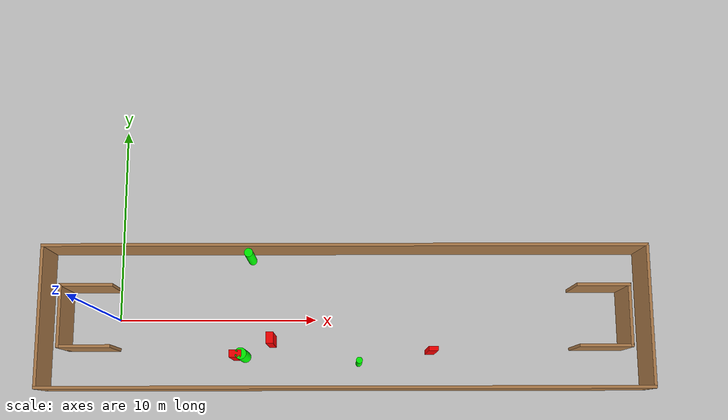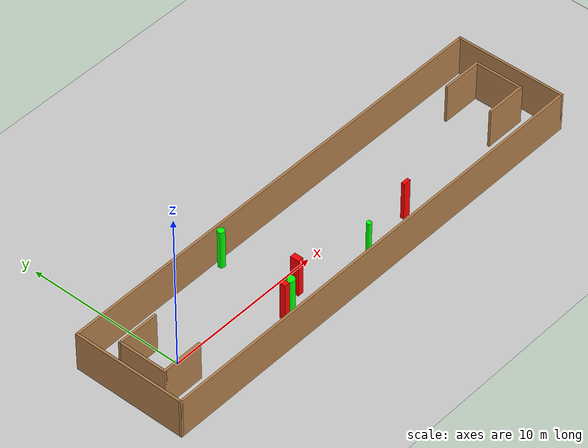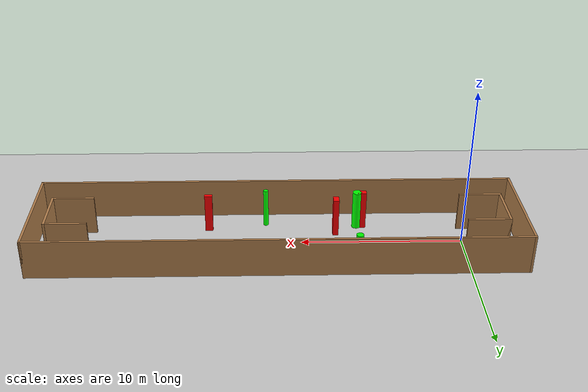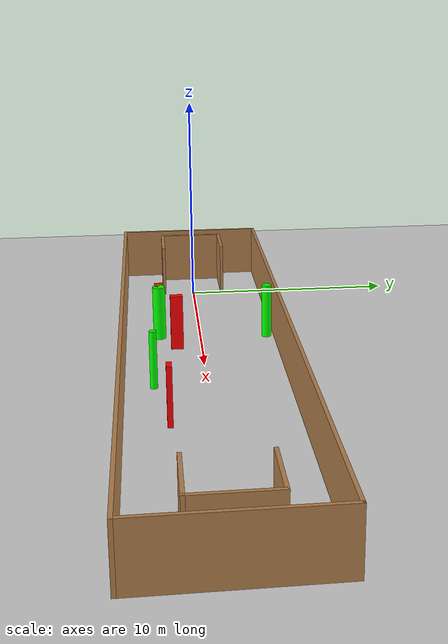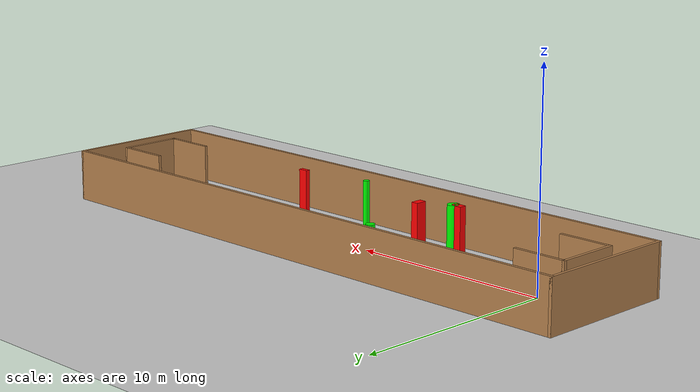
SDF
<sdf version="1.7">
 <world name="default">
  <light name="sun" type="directional">
   <pose>0 0 10 0 -0 0</pose>
   <diffuse>0.8 0.8 0.8 1</diffuse>
   <specular>0.2 0.2 0.2 1</specular>
   <attenuation>
    <range>1000</range>
    <constant>0.9</constant>
    <linear>0.01</linear>
    <quadratic>0.001</quadratic>
   </attenuation>
   <direction>-0.5 0.1 -0.9</direction>
   <spot><inner_angle>0</inner_angle><outer_angle>0</outer_angle><falloff>0</falloff></spot>
  </light>
  <model name="ground_plane">
   <static>1</static>
   <link name="link">
    <collision name="collision">
     <geometry><plane><normal>0 0 1</normal><size>100 100</size></plane></geometry>
     <surface>
      <contact><collide_bitmask>65535</collide_bitmask></contact>
      <friction><ode><mu>100</mu><mu2>50</mu2></ode></friction>
     </surface>
    </collision>
    <visual name="visual">
     <cast_shadows>0</cast_shadows>
     <geometry><plane><normal>0 0 1</normal><size>100 100</size></plane></geometry>
     <material>
      <script><uri>file://media/materials/scripts/gazebo.material</uri><name>Gazebo/Grey</name></script>
     </material>
    </visual>
   </link>
  </model>
  <gravity>0 0 -9.8</gravity>
  <magnetic_field>6e-06 2.3e-05 -4.2e-05</magnetic_field>
  <atmosphere type="adiabatic"/>
  <physics type="ode">
   <max_step_size>0.001</max_step_size>
   <real_time_factor>1</real_time_factor>
   <real_time_update_rate>1000</real_time_update_rate>
  </physics>
  <scene><ambient>0.4 0.4 0.4 1</ambient><background>0.7 0.7 0.7 1</background><shadows>1</shadows></scene>
  <spherical_coordinates>
   <surface_model>EARTH_WGS84</surface_model>
   <latitude_deg>0</latitude_deg>
   <longitude_deg>0</longitude_deg>
   <elevation>0</elevation>
   <heading_deg>0</heading_deg>
  </spherical_coordinates>
  <model name="my_base_walls">
   <link name="Wall_0">
    <collision name="Wall_0_Collision">
     <geometry><box><size>7.15 0.15 2.5</size></box></geometry>
     <pose>0 0 1.25 0 -0 0</pose>
    </collision>
    <visual name="Wall_0_Visual">
     <pose>0 0 1.25 0 -0 0</pose>
     <geometry><box><size>7.15 0.15 2.5</size></box></geometry>
     <material>
      <script><uri>file://media/materials/scripts/gazebo.material</uri><name>Gazebo/Wood</name></script>
      <ambient>1 1 1 1</ambient>
     </material>
     <meta><layer>0</layer></meta>
    </visual>
    <pose>-15 0 0 0 -0 1.5708</pose>
   </link>
   <link name="Wall_10">
    <collision name="Wall_10_Collision">
     <geometry><box><size>2.65 0.15 2.5</size></box></geometry>
     <pose>0 0 1.25 0 -0 0</pose>
    </collision>
    <visual name="Wall_10_Visual">
     <pose>0 0 1.25 0 -0 0</pose>
     <geometry><box><size>2.65 0.15 2.5</size></box></geometry>
     <material>
      <script><uri>file://media/materials/scripts/gazebo.material</uri><name>Gazebo/Wood</name></script>
      <ambient>1 1 1 1</ambient>
     </material>
     <meta><layer>0</layer></meta>
    </visual>
    <pose>-12.75 -1.5 0 0 -0 0</pose>
   </link>
   <link name="Wall_12">
    <collision name="Wall_12_Collision">
     <geometry><box><size>2.65 0.15 2.5</size></box></geometry>
     <pose>0 0 1.25 0 -0 0</pose>
    </collision>
    <visual name="Wall_12_Visual">
     <pose>0 0 1.25 0 -0 0</pose>
     <geometry><box><size>2.65 0.15 2.5</size></box></geometry>
     <material>
      <script><uri>file://media/materials/scripts/gazebo.material</uri><name>Gazebo/Wood</name></script>
      <ambient>1 1 1 1</ambient>
     </material>
     <meta><layer>0</layer></meta>
    </visual>
    <pose>-12.75 1.5 0 0 -0 0</pose>
   </link>
   <link name="Wall_14">
    <collision name="Wall_14_Collision">
     <geometry><box><size>3.15 0.15 2.5</size></box></geometry>
     <pose>0 0 1.25 0 -0 0</pose>
    </collision>
    <visual name="Wall_14_Visual">
     <pose>0 0 1.25 0 -0 0</pose>
     <geometry><box><size>3.15 0.15 2.5</size></box></geometry>
     <material>
      <script><uri>file://media/materials/scripts/gazebo.material</uri><name>Gazebo/Wood</name></script>
      <ambient>1 1 1 1</ambient>
     </material>
     <meta><layer>0</layer></meta>
    </visual>
    <pose>14 0 0 0 -0 -1.5708</pose>
   </link>
   <link name="Wall_15">
    <collision name="Wall_15_Collision">
     <geometry><box><size>2.65 0.15 2.5</size></box></geometry>
     <pose>0 0 1.25 0 -0 0</pose>
    </collision>
    <visual name="Wall_15_Visual">
     <pose>0 0 1.25 0 -0 0</pose>
     <geometry><box><size>2.65 0.15 2.5</size></box></geometry>
     <material>
      <script><uri>file://media/materials/scripts/gazebo.material</uri><name>Gazebo/Wood</name></script>
      <ambient>1 1 1 1</ambient>
     </material>
     <meta><layer>0</layer></meta>
    </visual>
    <pose>12.75 -1.5 0 0 -0 3.14159</pose>
   </link>
   <link name="Wall_17">
    <collision name="Wall_17_Collision">
     <geometry><box><size>2.65 0.15 2.5</size></box></geometry>
     <pose>0 0 1.25 0 -0 0</pose>
    </collision>
    <visual name="Wall_17_Visual">
     <pose>0 0 1.25 0 -0 0</pose>
     <geometry><box><size>2.65 0.15 2.5</size></box></geometry>
     <material>
      <script><uri>file://media/materials/scripts/gazebo.material</uri><name>Gazebo/Wood</name></script>
      <ambient>1 1 1 1</ambient>
     </material>
     <meta><layer>0</layer></meta>
    </visual>
    <pose>12.75 1.5 0 0 -0 3.14159</pose>
   </link>
   <link name="Wall_2">
    <collision name="Wall_2_Collision">
     <geometry><box><size>30.15 0.15 2.5</size></box></geometry>
     <pose>0 0 1.25 0 -0 0</pose>
    </collision>
    <visual name="Wall_2_Visual">
     <pose>0 0 1.25 0 -0 0</pose>
     <geometry><box><size>30.15 0.15 2.5</size></box></geometry>
     <material>
      <script><uri>file://media/materials/scripts/gazebo.material</uri><name>Gazebo/Wood</name></script>
      <ambient>1 1 1 1</ambient>
     </material>
     <meta><layer>0</layer></meta>
    </visual>
    <pose>-0 -3.5 0 0 -0 0</pose>
   </link>
   <link name="Wall_4">
    <collision name="Wall_4_Collision">
     <geometry><box><size>30.15 0.15 2.5</size></box></geometry>
     <pose>0 0 1.25 0 -0 0</pose>
    </collision>
    <visual name="Wall_4_Visual">
     <pose>0 0 1.25 0 -0 0</pose>
     <geometry><box><size>30.15 0.15 2.5</size></box></geometry>
     <material>
      <script><uri>file://media/materials/scripts/gazebo.material</uri><name>Gazebo/Wood</name></script>
      <ambient>1 1 1 1</ambient>
     </material>
     <meta><layer>0</layer></meta>
    </visual>
    <pose>-0 3.5 0 0 -0 0</pose>
   </link>
   <link name="Wall_6">
    <collision name="Wall_6_Collision">
     <geometry><box><size>7.15 0.15 2.5</size></box></geometry>
     <pose>0 0 1.25 0 -0 0</pose>
    </collision>
    <visual name="Wall_6_Visual">
     <pose>0 0 1.25 0 -0 0</pose>
     <geometry><box><size>7.15 0.15 2.5</size></box></geometry>
     <material>
      <script><uri>file://media/materials/scripts/gazebo.material</uri><name>Gazebo/Wood</name></script>
      <ambient>1 1 1 1</ambient>
     </material>
     <meta><layer>0</layer></meta>
    </visual>
    <pose>15 0 0 0 -0 -1.5708</pose>
   </link>
   <link name="Wall_9">
    <collision name="Wall_9_Collision">
     <geometry><box><size>3.15 0.15 2.5</size></box></geometry>
     <pose>0 0 1.25 0 -0 0</pose>
    </collision>
    <visual name="Wall_9_Visual">
     <pose>0 0 1.25 0 -0 0</pose>
     <geometry><box><size>3.15 0.15 2.5</size></box></geometry>
     <material>
      <script><uri>file://media/materials/scripts/gazebo.material</uri><name>Gazebo/Wood</name></script>
      <ambient>1 1 1 1</ambient>
     </material>
     <meta><layer>0</layer></meta>
    </visual>
    <pose>-14 0 0 0 -0 -1.5708</pose>
   </link>
   <static>1</static>
   <pose>11.5 0 0 0 -0 0</pose>
  </model>
  <model name="cylinder1">
   <static>1</static>
   <link name="link">
    <inertial>
     <mass>1</mass>
     <inertia><ixx>0.5</ixx><ixy>0</ixy><ixz>0</ixz><iyy>0.5</iyy><iyz>0</iyz><izz>1</izz></inertia>
    </inertial>
    <collision name="collision">
     <geometry><cylinder><radius>0.2867140778984285</radius><length>2.5</length></cylinder></geometry>
    </collision>
    <visual name="visual">
     <geometry><cylinder><radius>0.2867140778984285</radius><length>2.5</length></cylinder></geometry>
     <material>
      <ambient>0 1 0 1</ambient>
      <diffuse>0 1 0 1</diffuse>
      <specular>0.1 0.1 0.1 1</specular>
      <emissive>0 0 0 0</emissive>
     </material>
    </visual>
   </link>
   <pose>6.429712703635458 -1.8664561902486103 1.25 0 0 0</pose>
  </model>
  <model name="cylinder2">
   <static>1</static>
   <link name="link">
    <inertial>
     <mass>1</mass>
     <inertia><ixx>0.5</ixx><ixy>0</ixy><ixz>0</ixz><iyy>0.5</iyy><iyz>0</iyz><izz>1</izz></inertia>
    </inertial>
    <collision name="collision">
     <geometry><cylinder><radius>0.21823262251726494</radius><length>2.5</length></cylinder></geometry>
    </collision>
    <visual name="visual">
     <geometry><cylinder><radius>0.21823262251726494</radius><length>2.5</length></cylinder></geometry>
     <material>
      <ambient>0 1 0 1</ambient>
      <diffuse>0 1 0 1</diffuse>
      <specular>0.1 0.1 0.1 1</specular>
      <emissive>0 0 0 0</emissive>
     </material>
    </visual>
   </link>
   <pose>6.732677278204811 3.104151476690074 1.25 0 0 0</pose>
  </model>
  <model name="cylinder3">
   <static>1</static>
   <link name="link">
    <inertial>
     <mass>1</mass>
     <inertia><ixx>0.5</ixx><ixy>0</ixy><ixz>0</ixz><iyy>0.5</iyy><iyz>0</iyz><izz>1</izz></inertia>
    </inertial>
    <collision name="collision">
     <geometry><cylinder><radius>0.15590172028760987</radius><length>2.5</length></cylinder></geometry>
    </collision>
    <visual name="visual">
     <geometry><cylinder><radius>0.15590172028760987</radius><length>2.5</length></cylinder></geometry>
     <material>
      <ambient>0 1 0 1</ambient>
      <diffuse>0 1 0 1</diffuse>
      <specular>0.1 0.1 0.1 1</specular>
      <emissive>0 0 0 0</emissive>
     </material>
    </visual>
   </link>
   <pose>12.202587776341272 -2.208193111957334 1.25 0 0 0</pose>
  </model>
  <model name="box1">
   <static>1</static>
   <link name="link">
    <inertial>
     <mass>1</mass>
     <inertia><ixx>0.083</ixx><ixy>0</ixy><ixz>0</ixz><iyy>0.083</iyy><iyz>0</iyz><izz>0.083</izz></inertia>
    </inertial>
    <collision name="collision">
     <geometry><box><size>0.35355063559979644 0.5587787528786583 2.5</size></box></geometry>
    </collision>
    <visual name="visual">
     <geometry><box><size>0.35355063559979644 0.5587787528786583 2.5</size></box></geometry>
     <material>
      <ambient>1 0 0 1</ambient>
      <diffuse>1 0 0 1</diffuse>
      <specular>0.1 0.1 0.1 1</specular>
      <emissive>0 0 0 0</emissive>
     </material>
    </visual>
    <sensor name="my_contact" type="contact">
     <contact><collision>box_collision</collision><topic>__default_topic__</topic></contact>
    </sensor>
   </link>
   <pose>7.822792196592195 -1.1012669869964382 1.25 0 0 0</pose>
  </model>
  <model name="box2">
   <static>1</static>
   <link name="link">
    <inertial>
     <mass>1</mass>
     <inertia><ixx>0.083</ixx><ixy>0</ixy><ixz>0</ixz><iyy>0.083</iyy><iyz>0</iyz><izz>0.083</izz></inertia>
    </inertial>
    <collision name="collision">
     <geometry><box><size>0.47562945752994024 0.22062883675096645 2.5</size></box></geometry>
    </collision>
    <visual name="visual">
     <geometry><box><size>0.47562945752994024 0.22062883675096645 2.5</size></box></geometry>
     <material>
      <ambient>1 0 0 1</ambient>
      <diffuse>1 0 0 1</diffuse>
      <specular>0.1 0.1 0.1 1</specular>
      <emissive>0 0 0 0</emissive>
     </material>
    </visual>
    <sensor name="my_contact" type="contact">
     <contact><collision>box_collision</collision><topic>__default_topic__</topic></contact>
    </sensor>
   </link>
   <pose>15.818167880040281 -1.6356092565385816 1.25 0 0 0</pose>
  </model>
  <model name="box3">
   <static>1</static>
   <link name="link">
    <inertial>
     <mass>1</mass>
     <inertia><ixx>0.083</ixx><ixy>0</ixy><ixz>0</ixz><iyy>0.083</iyy><iyz>0</iyz><izz>0.083</izz></inertia>
    </inertial>
    <collision name="collision">
     <geometry><box><size>0.5951268671644696 0.3611528408651381 2.5</size></box></geometry>
    </collision>
    <visual name="visual">
     <geometry><box><size>0.5951268671644696 0.3611528408651381 2.5</size></box></geometry>
     <material>
      <ambient>1 0 0 1</ambient>
      <diffuse>1 0 0 1</diffuse>
      <specular>0.1 0.1 0.1 1</specular>
      <emissive>0 0 0 0</emissive>
     </material>
    </visual>
    <sensor name="my_contact" type="contact">
     <contact><collision>box_collision</collision><topic>__default_topic__</topic></contact>
    </sensor>
   </link>
   <pose>6.157563725466018 -1.8696003455709733 1.25 0 0 0</pose>
  </model>
 </world>
</sdf>
